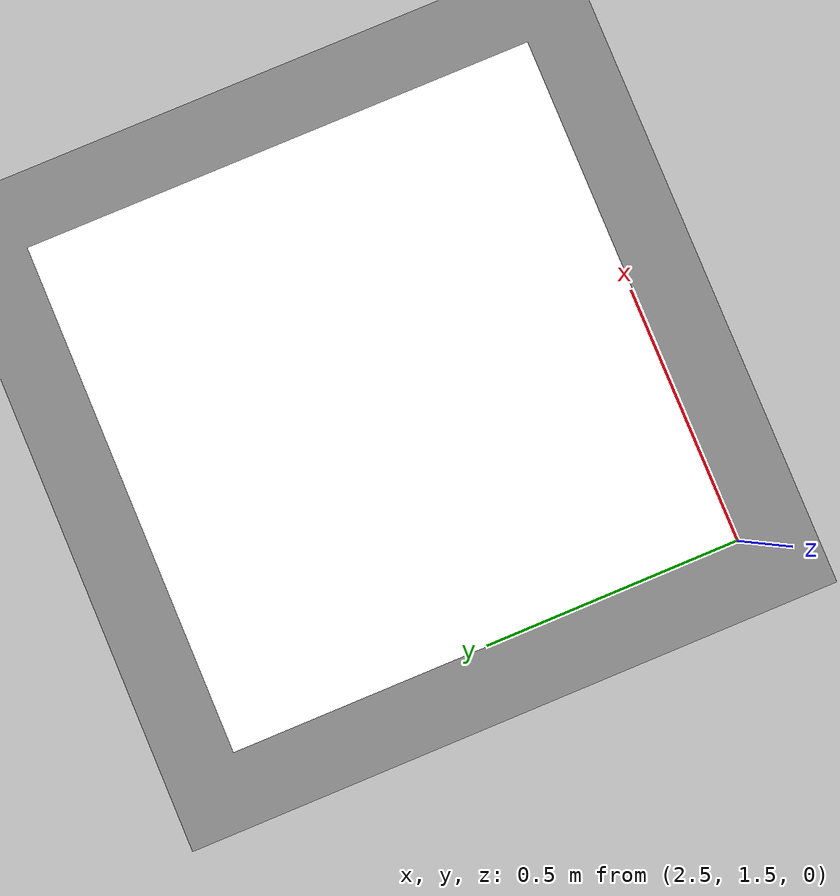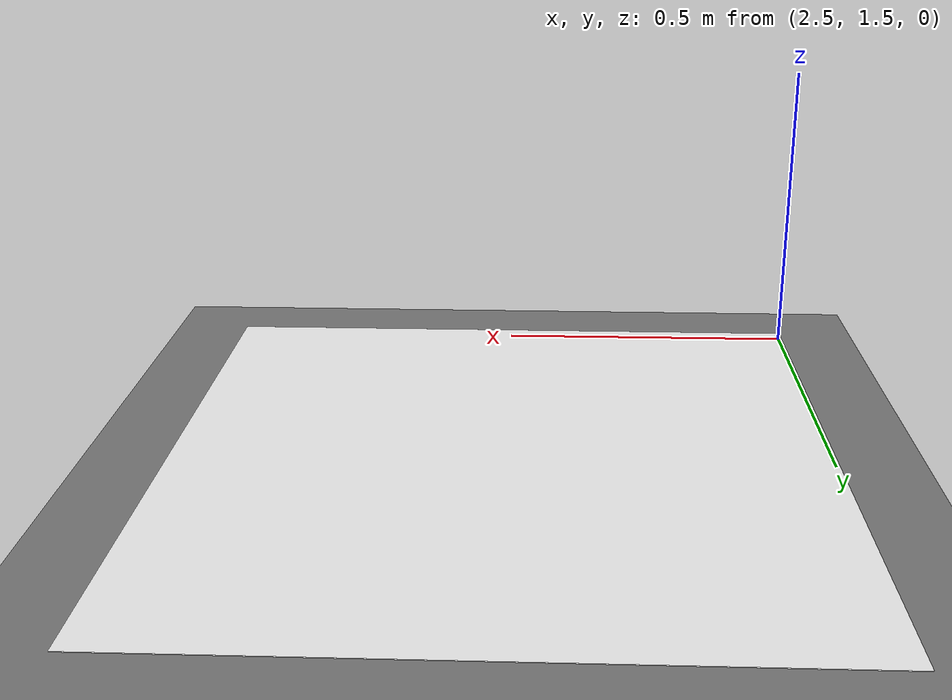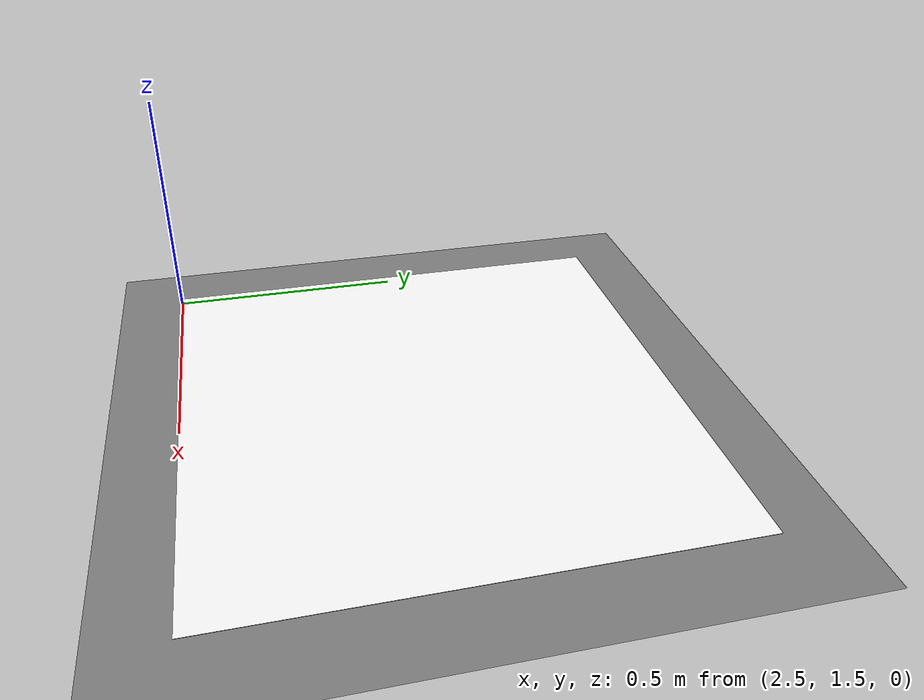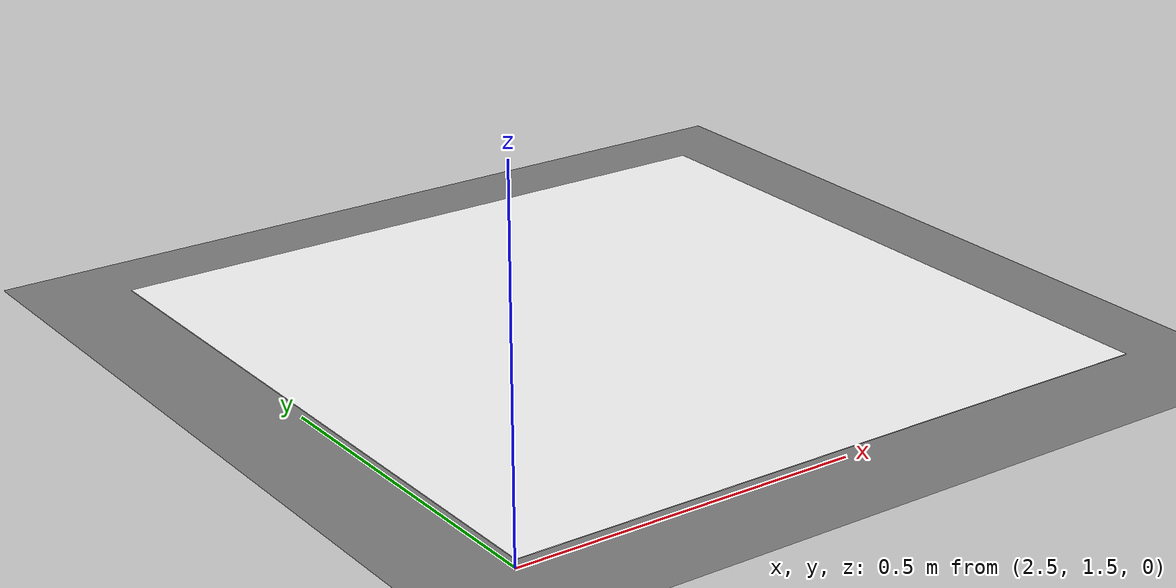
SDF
<?xml version="1.0" encoding="UTF-8"?>
<sdf version="1.9">
  <world name="nested_aruco_landing">
    <physics type="ode">
      <max_step_size>0.004</max_step_size>
      <real_time_factor>1.0</real_time_factor>
      <real_time_update_rate>250</real_time_update_rate>
    </physics>
    <gravity>0 0 -9.8</gravity>
    <magnetic_field>6e-06 2.3e-05 -4.2e-05</magnetic_field>
    <atmosphere type="adiabatic"/>

    <scene>
      <grid>false</grid>
      <ambient>0.8 0.8 0.8 1</ambient>
      <background>0.7 0.7 0.7 1</background>
      <shadows>false</shadows>
    </scene>

    <model name="ground_plane">
      <static>true</static>
      <link name="link">
        <collision name="collision">
          <geometry>
            <plane>
              <normal>0 0 1</normal>
              <size>1 1</size>
            </plane>
          </geometry>
          <surface>
            <friction><ode/></friction>
            <bounce/>
            <contact/>
          </surface>
        </collision>
        <visual name="visual">
          <geometry>
            <plane>
              <normal>0 0 1</normal>
              <size>500 500</size>
            </plane>
          </geometry>
          <material>
            <ambient>0.5 0.5 0.5 1</ambient>
            <diffuse>0.5 0.5 0.5 1</diffuse>
            <specular>0.5 0.5 0.5 1</specular>
          </material>
        </visual>
        <pose>0 0 0 0 0 0</pose>
        <inertial>
          <pose>0 0 0 0 0 0</pose>
          <mass>1</mass>
          <inertia>
            <ixx>1</ixx><ixy>0</ixy><ixz>0</ixz>
            <iyy>1</iyy><iyz>0</iyz><izz>1</izz>
          </inertia>
        </inertial>
        <enable_wind>false</enable_wind>
      </link>
      <pose>0 0 0 0 0 0</pose>
      <self_collide>false</self_collide>
    </model>

    <light name="sunUTC" type="directional">
      <pose>0 0 500 0 0 0</pose>
      <cast_shadows>false</cast_shadows>
      <intensity>1</intensity>
      <direction>0.001 0.625 -0.78</direction>
      <diffuse>0.904 0.904 0.904 1</diffuse>
      <specular>0.271 0.271 0.271 1</specular>
      <attenuation>
        <range>2000</range>
        <linear>0</linear>
        <constant>1</constant>
        <quadratic>0</quadratic>
      </attenuation>
    </light>

    <spherical_coordinates>
      <surface_model>EARTH_WGS84</surface_model>
      <world_frame_orientation>ENU</world_frame_orientation>
      <latitude_deg>47.397971057728974</latitude_deg>
      <longitude_deg>8.546163739800146</longitude_deg>
      <elevation>0</elevation>
    </spherical_coordinates>

    <include>
      <uri>model://nested_aruco_marker</uri>
      <name>landing_pad_nested_aruco</name>
      <pose>3.0 2.0 0 0 0 0</pose>
    </include>
  </world>
</sdf>

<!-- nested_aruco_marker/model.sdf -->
<sdf version="1.9">
  <model name="nested_aruco_marker">
    <static>true</static>
    <pose>0 0 0 0 0 0</pose>
    <link name="base">
      <collision name="base_collision">
        <pose>0 0 0.005 0 0 0</pose>
        <geometry>
          <box>
            <size>1.0 1.0 0.01</size>
          </box>
        </geometry>
      </collision>
      <visual name="base_visual">
        <pose>0 0 0.012 0 0 0</pose>
        <geometry>
          <plane>
            <normal>0 0 1</normal>
            <size>1.0 1.0</size>
          </plane>
        </geometry>
        <material>
          <diffuse>1 1 1 1</diffuse>
          <specular>0.2 0.2 0.2 1</specular>
          <pbr>
            <metal>
              <albedo_map>model://nested_aruco_marker/marker.png</albedo_map>
            </metal>
          </pbr>
        </material>
      </visual>
    </link>
  </model>
</sdf>
